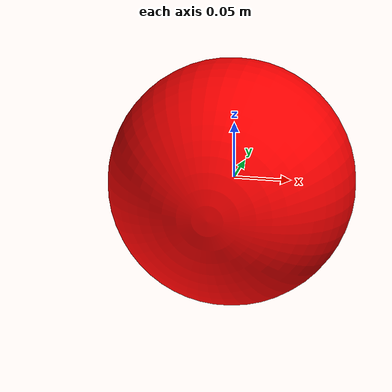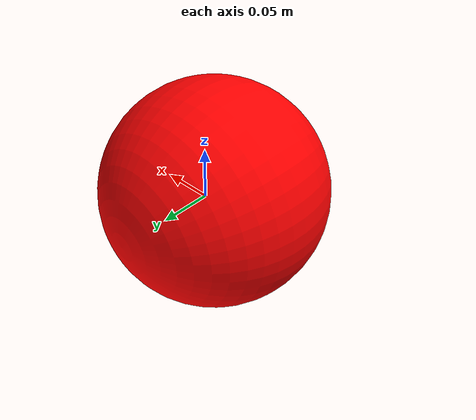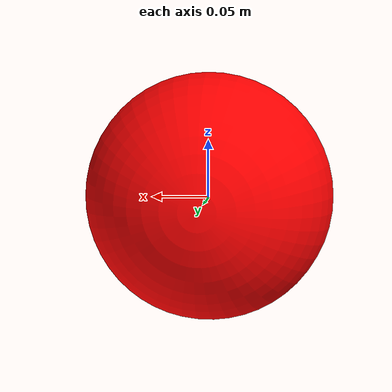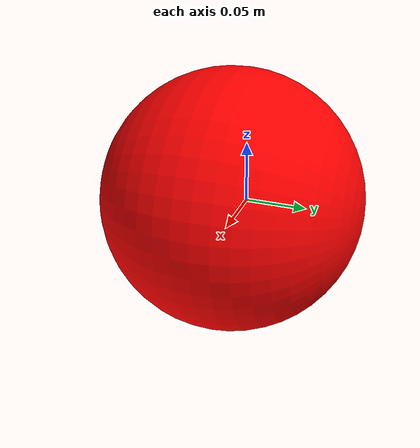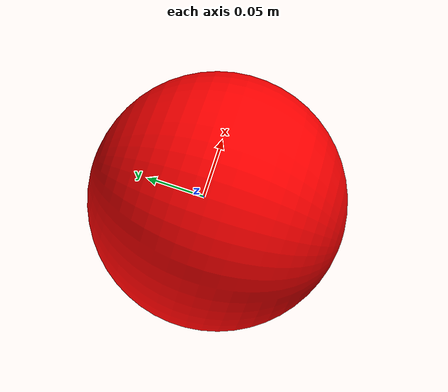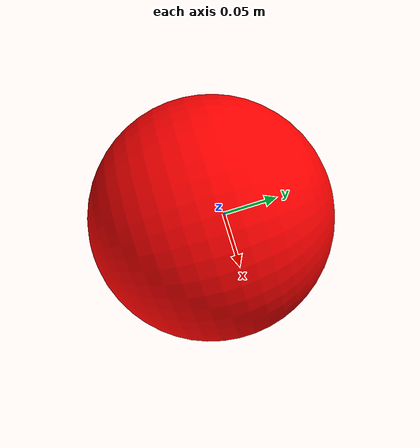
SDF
<?xml version="1.0" encoding="utf-8"?>
<sdf version="1.7">
  <model name="RedCargo">
    <pose>0 0 0 0 0 0</pose>
    <link name="Ball">
      <gravity>1</gravity>
      <self_collide>0</self_collide>
      <pose>0 0 0 0 0 0</pose>
      <must_be_base_link>1</must_be_base_link>
      <inertial>
        <mass>0.5</mass>
        <pose>0 0 0 0 0 0</pose>
        <inertia>
          <ixx>0.0</ixx>
          <ixy>0</ixy>
          <ixz>0</ixz>
          <iyy>0.0</iyy>
          <iyz>0</iyz>
          <izz>0.0</izz>
        </inertia>
      </inertial>

      <collision name="Ball_collision">
        <pose>0 -0.12065 0 0 0 0</pose>
        <geometry>
          <mesh>
            <scale>0.9 0.9 0.9</scale>
            <uri>model://RedCargo/meshes/Ball_col.STL</uri>
          </mesh>
        </geometry>
        <surface>
        <bounce>
          <restitution_coeeficient>0.5</restitution_coeeficient>
        </bounce>
        <friction>
          <ode>
            <mu>1</mu>
            <mu2>1</mu2>
          </ode>
        </friction>
        <contact>
          <ode>
            <max_vel>10</max_vel>
            <kd>1</kd>
            <kp>1e7</kp>
            <min_depth>0.0001</min_depth>
          </ode>
        </contact>
		  </surface>
      </collision>
      <visual name="Ball_visual">
        <pose>0 -0.12065 0 0 0 0</pose>
        <material>
          <ambient>1 0 0 1</ambient>
          <diffuse>1 0 0 1</diffuse>
        </material>
        <geometry>
          <mesh>
            <scale>0.9 0.9 0.9</scale>
            <uri>model://RedCargo/meshes/Ball.STL</uri>
          </mesh>
        </geometry>
      </visual>
    </link>
  </model>
</sdf>
